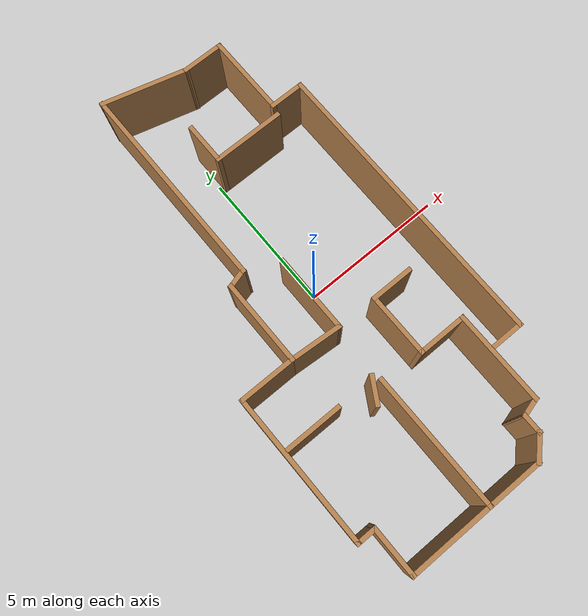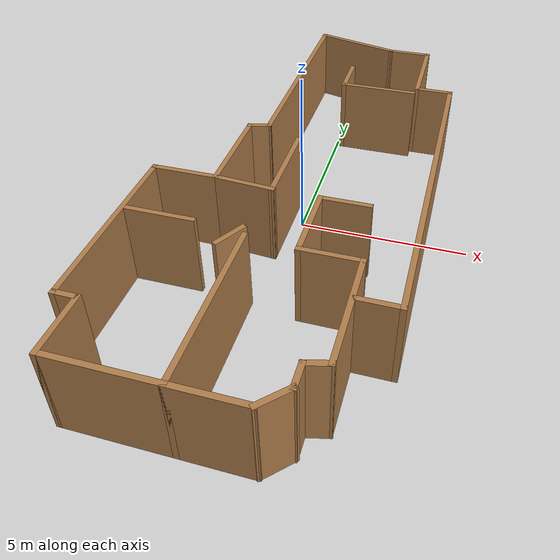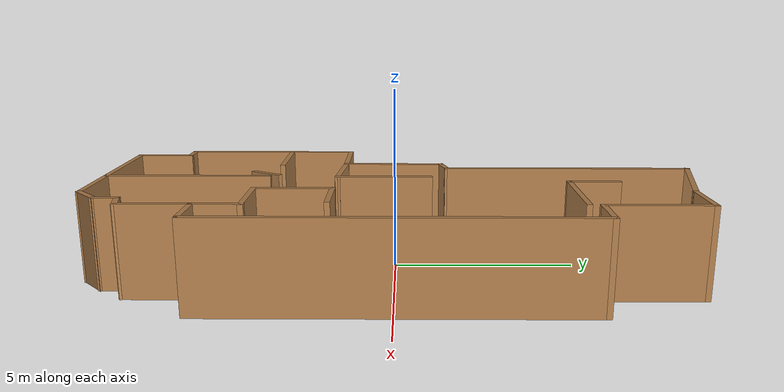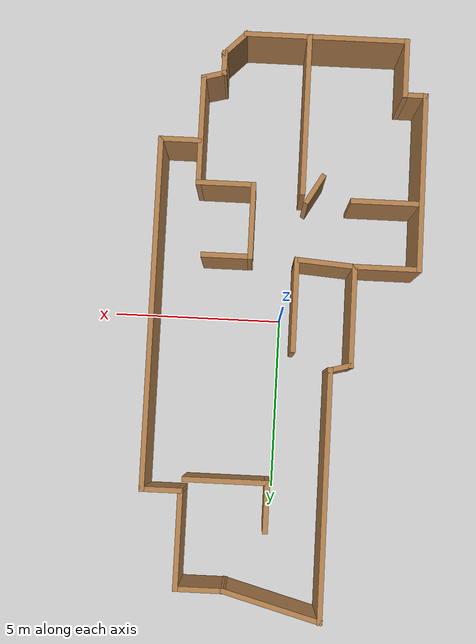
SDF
<?xml version='1.0'?>
<sdf version='1.6'>
  <model name='map_43'>
    <pose frame=''>-0.100831 0.188058 0 0 -0 0</pose>
    <link name='Wall_10'>
      <collision name='Wall_10_Collision'>
        <geometry>
          <box>
            <size>1.75 0.15 2.5</size>
          </box>
        </geometry>
        <pose frame=''>0 0 1.25 0 -0 0</pose>
      </collision>
      <visual name='Wall_10_Visual'>
        <pose frame=''>0 0 1.25 0 -0 0</pose>
        <geometry>
          <box>
            <size>1.75 0.15 2.5</size>
          </box>
        </geometry>
        <material>
          <script>
            <uri>file://media/materials/scripts/gazebo.material</uri>
            <name>Gazebo/Wood</name>
          </script>
          <ambient>1 1 1 1</ambient>
        </material>
        <meta>
          <layer>0</layer>
        </meta>
      </visual>
      <pose frame=''>-3.21622 -7.59554 0 0 -0 -1.5708</pose>
    </link>
    <link name='Wall_11'>
      <collision name='Wall_11_Collision'>
        <geometry>
          <box>
            <size>3 0.15 2.5</size>
          </box>
        </geometry>
        <pose frame=''>0 0 1.25 0 -0 0</pose>
      </collision>
      <visual name='Wall_11_Visual'>
        <pose frame=''>0 0 1.25 0 -0 0</pose>
        <geometry>
          <box>
            <size>3 0.15 2.5</size>
          </box>
        </geometry>
        <material>
          <script>
            <uri>file://media/materials/scripts/gazebo.material</uri>
            <name>Gazebo/Wood</name>
          </script>
          <ambient>1 1 1 1</ambient>
        </material>
        <meta>
          <layer>0</layer>
        </meta>
      </visual>
      <pose frame=''>-1.79122 -8.39554 0 0 -0 0</pose>
    </link>
    <link name='Wall_12'>
      <collision name='Wall_12_Collision'>
        <geometry>
          <box>
            <size>4.75 0.15 2.5</size>
          </box>
        </geometry>
        <pose frame=''>0 0 1.25 0 -0 0</pose>
      </collision>
      <visual name='Wall_12_Visual'>
        <pose frame=''>0 0 1.25 0 -0 0</pose>
        <geometry>
          <box>
            <size>4.75 0.15 2.5</size>
          </box>
        </geometry>
        <material>
          <script>
            <uri>file://media/materials/scripts/gazebo.material</uri>
            <name>Gazebo/Wood</name>
          </script>
          <ambient>1 1 1 1</ambient>
        </material>
        <meta>
          <layer>0</layer>
        </meta>
      </visual>
      <pose frame=''>-0.366222 -6.09554 0 0 -0 1.5708</pose>
    </link>
    <link name='Wall_14'>
      <collision name='Wall_14_Collision'>
        <geometry>
          <box>
            <size>2 0.15 2.5</size>
          </box>
        </geometry>
        <pose frame=''>0 0 1.25 0 -0 0</pose>
      </collision>
      <visual name='Wall_14_Visual'>
        <pose frame=''>0 0 1.25 0 -0 0</pose>
        <geometry>
          <box>
            <size>2 0.15 2.5</size>
          </box>
        </geometry>
        <material>
          <script>
            <uri>file://media/materials/scripts/gazebo.material</uri>
            <name>Gazebo/Wood</name>
          </script>
          <ambient>1 1 1 1</ambient>
        </material>
        <meta>
          <layer>0</layer>
        </meta>
      </visual>
      <pose frame=''>0.558778 -8.39554 0 0 -0 0</pose>
    </link>
    <link name='Wall_15'>
      <collision name='Wall_15_Collision'>
        <geometry>
          <box>
            <size>1 0.15 2.5</size>
          </box>
        </geometry>
        <pose frame=''>0 0 1.25 0 -0 0</pose>
      </collision>
      <visual name='Wall_15_Visual'>
        <pose frame=''>0 0 1.25 0 -0 0</pose>
        <geometry>
          <box>
            <size>1 0.15 2.5</size>
          </box>
        </geometry>
        <material>
          <script>
            <uri>file://media/materials/scripts/gazebo.material</uri>
            <name>Gazebo/Wood</name>
          </script>
          <ambient>1 1 1 1</ambient>
        </material>
        <meta>
          <layer>0</layer>
        </meta>
      </visual>
      <pose frame=''>1.7843 -8.09502 0 0 -0 0.785398</pose>
    </link>
    <link name='Wall_16'>
      <collision name='Wall_16_Collision'>
        <geometry>
          <box>
            <size>0.75 0.15 2.5</size>
          </box>
        </geometry>
        <pose frame=''>0 0 1.25 0 -0 0</pose>
      </collision>
      <visual name='Wall_16_Visual'>
        <pose frame=''>0 0 1.25 0 -0 0</pose>
        <geometry>
          <box>
            <size>0.75 0.15 2.5</size>
          </box>
        </geometry>
        <material>
          <script>
            <uri>file://media/materials/scripts/gazebo.material</uri>
            <name>Gazebo/Wood</name>
          </script>
          <ambient>1 1 1 1</ambient>
        </material>
        <meta>
          <layer>0</layer>
        </meta>
      </visual>
      <pose frame=''>2.08482 -7.4945 0 0 -0 1.5708</pose>
    </link>
    <link name='Wall_17'>
      <collision name='Wall_17_Collision'>
        <geometry>
          <box>
            <size>0.75 0.15 2.5</size>
          </box>
        </geometry>
        <pose frame=''>0 0 1.25 0 -0 0</pose>
      </collision>
      <visual name='Wall_17_Visual'>
        <pose frame=''>0 0 1.25 0 -0 0</pose>
        <geometry>
          <box>
            <size>0.75 0.15 2.5</size>
          </box>
        </geometry>
        <material>
          <script>
            <uri>file://media/materials/scripts/gazebo.material</uri>
            <name>Gazebo/Wood</name>
          </script>
          <ambient>1 1 1 1</ambient>
        </material>
        <meta>
          <layer>0</layer>
        </meta>
      </visual>
      <pose frame=''>2.3746 -7.11685 0 0 -0 0.261799</pose>
    </link>
    <link name='Wall_18'>
      <collision name='Wall_18_Collision'>
        <geometry>
          <box>
            <size>3.25 0.15 2.5</size>
          </box>
        </geometry>
        <pose frame=''>0 0 1.25 0 -0 0</pose>
      </collision>
      <visual name='Wall_18_Visual'>
        <pose frame=''>0 0 1.25 0 -0 0</pose>
        <geometry>
          <box>
            <size>3.25 0.15 2.5</size>
          </box>
        </geometry>
        <material>
          <script>
            <uri>file://media/materials/scripts/gazebo.material</uri>
            <name>Gazebo/Wood</name>
          </script>
          <ambient>1 1 1 1</ambient>
        </material>
        <meta>
          <layer>0</layer>
        </meta>
      </visual>
      <pose frame=''>2.66437 -5.48921 0 0 -0 1.5708</pose>
    </link>
    <link name='Wall_19'>
      <collision name='Wall_19_Collision'>
        <geometry>
          <box>
            <size>1.75 0.15 2.5</size>
          </box>
        </geometry>
        <pose frame=''>0 0 1.25 0 -0 0</pose>
      </collision>
      <visual name='Wall_19_Visual'>
        <pose frame=''>0 0 1.25 0 -0 0</pose>
        <geometry>
          <box>
            <size>1.75 0.15 2.5</size>
          </box>
        </geometry>
        <material>
          <script>
            <uri>file://media/materials/scripts/gazebo.material</uri>
            <name>Gazebo/Wood</name>
          </script>
          <ambient>1 1 1 1</ambient>
        </material>
        <meta>
          <layer>0</layer>
        </meta>
      </visual>
      <pose frame=''>1.86437 -3.93921 0 0 -0 3.14159</pose>
    </link>
    <link name='Wall_2'>
      <collision name='Wall_2_Collision'>
        <geometry>
          <box>
            <size>1.5 0.15 2.5</size>
          </box>
        </geometry>
        <pose frame=''>0 0 1.25 0 -0 0</pose>
      </collision>
      <visual name='Wall_2_Visual'>
        <pose frame=''>0 0 1.25 0 -0 0</pose>
        <geometry>
          <box>
            <size>1.5 0.15 2.5</size>
          </box>
        </geometry>
        <material>
          <script>
            <uri>file://media/materials/scripts/gazebo.material</uri>
            <name>Gazebo/Wood</name>
          </script>
          <ambient>1 1 1 1</ambient>
        </material>
        <meta>
          <layer>0</layer>
        </meta>
      </visual>
      <pose frame=''>2.04122 7.67212 0 0 -0 3.14159</pose>
    </link>
    <link name='Wall_21'>
      <collision name='Wall_21_Collision'>
        <geometry>
          <box>
            <size>1.25 0.15 2.5</size>
          </box>
        </geometry>
        <pose frame=''>0 0 1.25 0 -0 0</pose>
      </collision>
      <visual name='Wall_21_Visual'>
        <pose frame=''>0 0 1.25 0 -0 0</pose>
        <geometry>
          <box>
            <size>1.25 0.15 2.5</size>
          </box>
        </geometry>
        <material>
          <script>
            <uri>file://media/materials/scripts/gazebo.material</uri>
            <name>Gazebo/Wood</name>
          </script>
          <ambient>1 1 1 1</ambient>
        </material>
        <meta>
          <layer>0</layer>
        </meta>
      </visual>
      <pose frame=''>3.26622 -5.16848 0 0 -0 0</pose>
    </link>
    <link name='Wall_22'>
      <collision name='Wall_22_Collision'>
        <geometry>
          <box>
            <size>10.25 0.15 2.5</size>
          </box>
        </geometry>
        <pose frame=''>0 0 1.25 0 -0 0</pose>
      </collision>
      <visual name='Wall_22_Visual'>
        <pose frame=''>0 0 1.25 0 -0 0</pose>
        <geometry>
          <box>
            <size>10.25 0.15 2.5</size>
          </box>
        </geometry>
        <material>
          <script>
            <uri>file://media/materials/scripts/gazebo.material</uri>
            <name>Gazebo/Wood</name>
          </script>
          <ambient>1 1 1 1</ambient>
        </material>
        <meta>
          <layer>0</layer>
        </meta>
      </visual>
      <pose frame=''>3.81622 -0.118484 0 0 -0 1.5708</pose>
    </link>
    <link name='Wall_23'>
      <collision name='Wall_23_Collision'>
        <geometry>
          <box>
            <size>1.25 0.15 2.5</size>
          </box>
        </geometry>
        <pose frame=''>0 0 1.25 0 -0 0</pose>
      </collision>
      <visual name='Wall_23_Visual'>
        <pose frame=''>0 0 1.25 0 -0 0</pose>
        <geometry>
          <box>
            <size>1.25 0.15 2.5</size>
          </box>
        </geometry>
        <material>
          <script>
            <uri>file://media/materials/scripts/gazebo.material</uri>
            <name>Gazebo/Wood</name>
          </script>
          <ambient>1 1 1 1</ambient>
        </material>
        <meta>
          <layer>0</layer>
        </meta>
      </visual>
      <pose frame=''>3.26622 4.93152 0 0 -0 3.14159</pose>
    </link>
    <link name='Wall_24'>
      <collision name='Wall_24_Collision'>
        <geometry>
          <box>
            <size>2.8906 0.15 2.5</size>
          </box>
        </geometry>
        <pose frame=''>0 0 1.25 0 -0 0</pose>
      </collision>
      <visual name='Wall_24_Visual'>
        <pose frame=''>0 0 1.25 0 -0 0</pose>
        <geometry>
          <box>
            <size>2.8906 0.15 2.5</size>
          </box>
        </geometry>
        <material>
          <script>
            <uri>file://media/materials/scripts/gazebo.material</uri>
            <name>Gazebo/Wood</name>
          </script>
          <ambient>1 1 1 1</ambient>
        </material>
        <meta>
          <layer>0</layer>
        </meta>
      </visual>
      <pose frame=''>2.71622 6.30182 0 0 -0 1.5708</pose>
    </link>
    <link name='Wall_26'>
      <collision name='Wall_26_Collision'>
        <geometry>
          <box>
            <size>2 0.15 2.5</size>
          </box>
        </geometry>
        <pose frame=''>0 0 1.25 0 -0 0</pose>
      </collision>
      <visual name='Wall_26_Visual'>
        <pose frame=''>0 0 1.25 0 -0 0</pose>
        <geometry>
          <box>
            <size>2 0.15 2.5</size>
          </box>
        </geometry>
        <material>
          <script>
            <uri>file://media/materials/scripts/gazebo.material</uri>
            <name>Gazebo/Wood</name>
          </script>
          <ambient>1 1 1 1</ambient>
        </material>
        <meta>
          <layer>0</layer>
        </meta>
      </visual>
      <pose frame=''>-2.76117 -3.60543 0 0 -0 0</pose>
    </link>
    <link name='Wall_28'>
      <collision name='Wall_28_Collision'>
        <geometry>
          <box>
            <size>2.5 0.15 2.5</size>
          </box>
        </geometry>
        <pose frame=''>0 0 1.25 0 -0 0</pose>
      </collision>
      <visual name='Wall_28_Visual'>
        <pose frame=''>0 0 1.25 0 -0 0</pose>
        <geometry>
          <box>
            <size>2.5 0.15 2.5</size>
          </box>
        </geometry>
        <material>
          <script>
            <uri>file://media/materials/scripts/gazebo.material</uri>
            <name>Gazebo/Wood</name>
          </script>
          <ambient>1 1 1 1</ambient>
        </material>
        <meta>
          <layer>0</layer>
        </meta>
      </visual>
      <pose frame=''>1.4362 4.60239 0 0 -0 3.14159</pose>
    </link>
    <link name='Wall_29'>
      <collision name='Wall_29_Collision'>
        <geometry>
          <box>
            <size>1.5 0.15 2.5</size>
          </box>
        </geometry>
        <pose frame=''>0 0 1.25 0 -0 0</pose>
      </collision>
      <visual name='Wall_29_Visual'>
        <pose frame=''>0 0 1.25 0 -0 0</pose>
        <geometry>
          <box>
            <size>1.5 0.15 2.5</size>
          </box>
        </geometry>
        <material>
          <script>
            <uri>file://media/materials/scripts/gazebo.material</uri>
            <name>Gazebo/Wood</name>
          </script>
          <ambient>1 1 1 1</ambient>
        </material>
        <meta>
          <layer>0</layer>
        </meta>
      </visual>
      <pose frame=''>0.261205 5.27739 0 0 -0 1.5708</pose>
    </link>
    <link name='Wall_3'>
      <collision name='Wall_3_Collision'>
        <geometry>
          <box>
            <size>3 0.15 2.5</size>
          </box>
        </geometry>
        <pose frame=''>0 0 1.25 0 -0 0</pose>
      </collision>
      <visual name='Wall_3_Visual'>
        <pose frame=''>0 0 1.25 0 -0 0</pose>
        <geometry>
          <box>
            <size>3 0.15 2.5</size>
          </box>
        </geometry>
        <material>
          <script>
            <uri>file://media/materials/scripts/gazebo.material</uri>
            <name>Gazebo/Wood</name>
          </script>
          <ambient>1 1 1 1</ambient>
        </material>
        <meta>
          <layer>0</layer>
        </meta>
      </visual>
      <pose frame=''>-0.010222 8.04093 0 0 -0 2.87979</pose>
    </link>
    <link name='Wall_31'>
      <collision name='Wall_31_Collision'>
        <geometry>
          <box>
            <size>2.25 0.15 2.5</size>
          </box>
        </geometry>
        <pose frame=''>0 0 1.25 0 -0 0</pose>
      </collision>
      <visual name='Wall_31_Visual'>
        <pose frame=''>0 0 1.25 0 -0 0</pose>
        <geometry>
          <box>
            <size>2.25 0.15 2.5</size>
          </box>
        </geometry>
        <material>
          <script>
            <uri>file://media/materials/scripts/gazebo.material</uri>
            <name>Gazebo/Wood</name>
          </script>
          <ambient>1 1 1 1</ambient>
        </material>
        <meta>
          <layer>0</layer>
        </meta>
      </visual>
      <pose frame=''>1.06437 -2.88921 0 0 -0 1.5708</pose>
    </link>
    <link name='Wall_32'>
      <collision name='Wall_32_Collision'>
        <geometry>
          <box>
            <size>1.5 0.15 2.5</size>
          </box>
        </geometry>
        <pose frame=''>0 0 1.25 0 -0 0</pose>
      </collision>
      <visual name='Wall_32_Visual'>
        <pose frame=''>0 0 1.25 0 -0 0</pose>
        <geometry>
          <box>
            <size>1.5 0.15 2.5</size>
          </box>
        </geometry>
        <material>
          <script>
            <uri>file://media/materials/scripts/gazebo.material</uri>
            <name>Gazebo/Wood</name>
          </script>
          <ambient>1 1 1 1</ambient>
        </material>
        <meta>
          <layer>0</layer>
        </meta>
      </visual>
      <pose frame=''>1.73937 -1.83921 0 0 -0 0</pose>
    </link>
    <link name='Wall_34'>
      <collision name='Wall_34_Collision'>
        <geometry>
          <box>
            <size>2.75 0.15 2.5</size>
          </box>
        </geometry>
        <pose frame=''>0 0 1.25 0 -0 0</pose>
      </collision>
      <visual name='Wall_34_Visual'>
        <pose frame=''>0 0 1.25 0 -0 0</pose>
        <geometry>
          <box>
            <size>2.75 0.15 2.5</size>
          </box>
        </geometry>
        <material>
          <script>
            <uri>file://media/materials/scripts/gazebo.material</uri>
            <name>Gazebo/Wood</name>
          </script>
          <ambient>1 1 1 1</ambient>
        </material>
        <meta>
          <layer>0</layer>
        </meta>
      </visual>
      <pose frame=''>-0.289835 -0.518495 0 0 -0 -1.5708</pose>
    </link>
    <link name='Wall_35'>
      <collision name='Wall_35_Collision'>
        <geometry>
          <box>
            <size>1.83089 0.15 2.5</size>
          </box>
        </geometry>
        <pose frame=''>0 0 1.25 0 -0 0</pose>
      </collision>
      <visual name='Wall_35_Visual'>
        <pose frame=''>0 0 1.25 0 -0 0</pose>
        <geometry>
          <box>
            <size>1.83089 0.15 2.5</size>
          </box>
        </geometry>
        <material>
          <script>
            <uri>file://media/materials/scripts/gazebo.material</uri>
            <name>Gazebo/Wood</name>
          </script>
          <ambient>1 1 1 1</ambient>
        </material>
        <meta>
          <layer>0</layer>
        </meta>
      </visual>
      <pose frame=''>-1.12803 -1.75702 0 0 -0 3.06838</pose>
    </link>
    <link name='Wall_38'>
      <collision name='Wall_38_Collision'>
        <geometry>
          <box>
            <size>1 0.15 2.5</size>
          </box>
        </geometry>
        <pose frame=''>0 0 1.25 0 -0 0</pose>
      </collision>
      <visual name='Wall_38_Visual'>
        <pose frame=''>0 0 1.25 0 -0 0</pose>
        <geometry>
          <box>
            <size>1 0.15 2.5</size>
          </box>
        </geometry>
        <material>
          <script>
            <uri>file://media/materials/scripts/gazebo.material</uri>
            <name>Gazebo/Wood</name>
          </script>
          <ambient>1 1 1 1</ambient>
        </material>
        <meta>
          <layer>0</layer>
        </meta>
      </visual>
      <pose frame=''>-0.714606 -3.90274 0 0 -0 -2.0944</pose>
    </link>
    <link name='Wall_4'>
      <collision name='Wall_4_Collision'>
        <geometry>
          <box>
            <size>7.25 0.15 2.5</size>
          </box>
        </geometry>
        <pose frame=''>0 0 1.25 0 -0 0</pose>
      </collision>
      <visual name='Wall_4_Visual'>
        <pose frame=''>0 0 1.25 0 -0 0</pose>
        <geometry>
          <box>
            <size>7.25 0.15 2.5</size>
          </box>
        </geometry>
        <material>
          <script>
            <uri>file://media/materials/scripts/gazebo.material</uri>
            <name>Gazebo/Wood</name>
          </script>
          <ambient>1 1 1 1</ambient>
        </material>
        <meta>
          <layer>0</layer>
        </meta>
      </visual>
      <pose frame=''>-1.38667 4.85975 0 0 -0 -1.5708</pose>
    </link>
    <link name='Wall_5'>
      <collision name='Wall_5_Collision'>
        <geometry>
          <box>
            <size>0.75 0.15 2.5</size>
          </box>
        </geometry>
        <pose frame=''>0 0 1.25 0 -0 0</pose>
      </collision>
      <visual name='Wall_5_Visual'>
        <pose frame=''>0 0 1.25 0 -0 0</pose>
        <geometry>
          <box>
            <size>0.75 0.15 2.5</size>
          </box>
        </geometry>
        <material>
          <script>
            <uri>file://media/materials/scripts/gazebo.material</uri>
            <name>Gazebo/Wood</name>
          </script>
          <ambient>1 1 1 1</ambient>
        </material>
        <meta>
          <layer>0</layer>
        </meta>
      </visual>
      <pose frame=''>-1.67644 1.23211 0 0 -0 -2.87979</pose>
    </link>
    <link name='Wall_6'>
      <collision name='Wall_6_Collision'>
        <geometry>
          <box>
            <size>3 0.15 2.5</size>
          </box>
        </geometry>
        <pose frame=''>0 0 1.25 0 -0 0</pose>
      </collision>
      <visual name='Wall_6_Visual'>
        <pose frame=''>0 0 1.25 0 -0 0</pose>
        <geometry>
          <box>
            <size>3 0.15 2.5</size>
          </box>
        </geometry>
        <material>
          <script>
            <uri>file://media/materials/scripts/gazebo.material</uri>
            <name>Gazebo/Wood</name>
          </script>
          <ambient>1 1 1 1</ambient>
        </material>
        <meta>
          <layer>0</layer>
        </meta>
      </visual>
      <pose frame=''>-1.96622 -0.270541 0 0 -0 -1.5708</pose>
    </link>
    <link name='Wall_7'>
      <collision name='Wall_7_Collision'>
        <geometry>
          <box>
            <size>2 0.15 2.5</size>
          </box>
        </geometry>
        <pose frame=''>0 0 1.25 0 -0 0</pose>
      </collision>
      <visual name='Wall_7_Visual'>
        <pose frame=''>0 0 1.25 0 -0 0</pose>
        <geometry>
          <box>
            <size>2 0.15 2.5</size>
          </box>
        </geometry>
        <material>
          <script>
            <uri>file://media/materials/scripts/gazebo.material</uri>
            <name>Gazebo/Wood</name>
          </script>
          <ambient>1 1 1 1</ambient>
        </material>
        <meta>
          <layer>0</layer>
        </meta>
      </visual>
      <pose frame=''>-2.89122 -1.69554 0 0 -0 3.14159</pose>
    </link>
    <link name='Wall_8'>
      <collision name='Wall_8_Collision'>
        <geometry>
          <box>
            <size>5.25 0.15 2.5</size>
          </box>
        </geometry>
        <pose frame=''>0 0 1.25 0 -0 0</pose>
      </collision>
      <visual name='Wall_8_Visual'>
        <pose frame=''>0 0 1.25 0 -0 0</pose>
        <geometry>
          <box>
            <size>5.25 0.15 2.5</size>
          </box>
        </geometry>
        <material>
          <script>
            <uri>file://media/materials/scripts/gazebo.material</uri>
            <name>Gazebo/Wood</name>
          </script>
          <ambient>1 1 1 1</ambient>
        </material>
        <meta>
          <layer>0</layer>
        </meta>
      </visual>
      <pose frame=''>-3.81622 -4.24554 0 0 -0 -1.5708</pose>
    </link>
    <link name='Wall_9'>
      <collision name='Wall_9_Collision'>
        <geometry>
          <box>
            <size>0.75 0.15 2.5</size>
          </box>
        </geometry>
        <pose frame=''>0 0 1.25 0 -0 0</pose>
      </collision>
      <visual name='Wall_9_Visual'>
        <pose frame=''>0 0 1.25 0 -0 0</pose>
        <geometry>
          <box>
            <size>0.75 0.15 2.5</size>
          </box>
        </geometry>
        <material>
          <script>
            <uri>file://media/materials/scripts/gazebo.material</uri>
            <name>Gazebo/Wood</name>
          </script>
          <ambient>1 1 1 1</ambient>
        </material>
        <meta>
          <layer>0</layer>
        </meta>
      </visual>
      <pose frame=''>-3.51622 -6.79554 0 0 -0 0</pose>
    </link>
    <static>1</static>
  </model>
</sdf>
